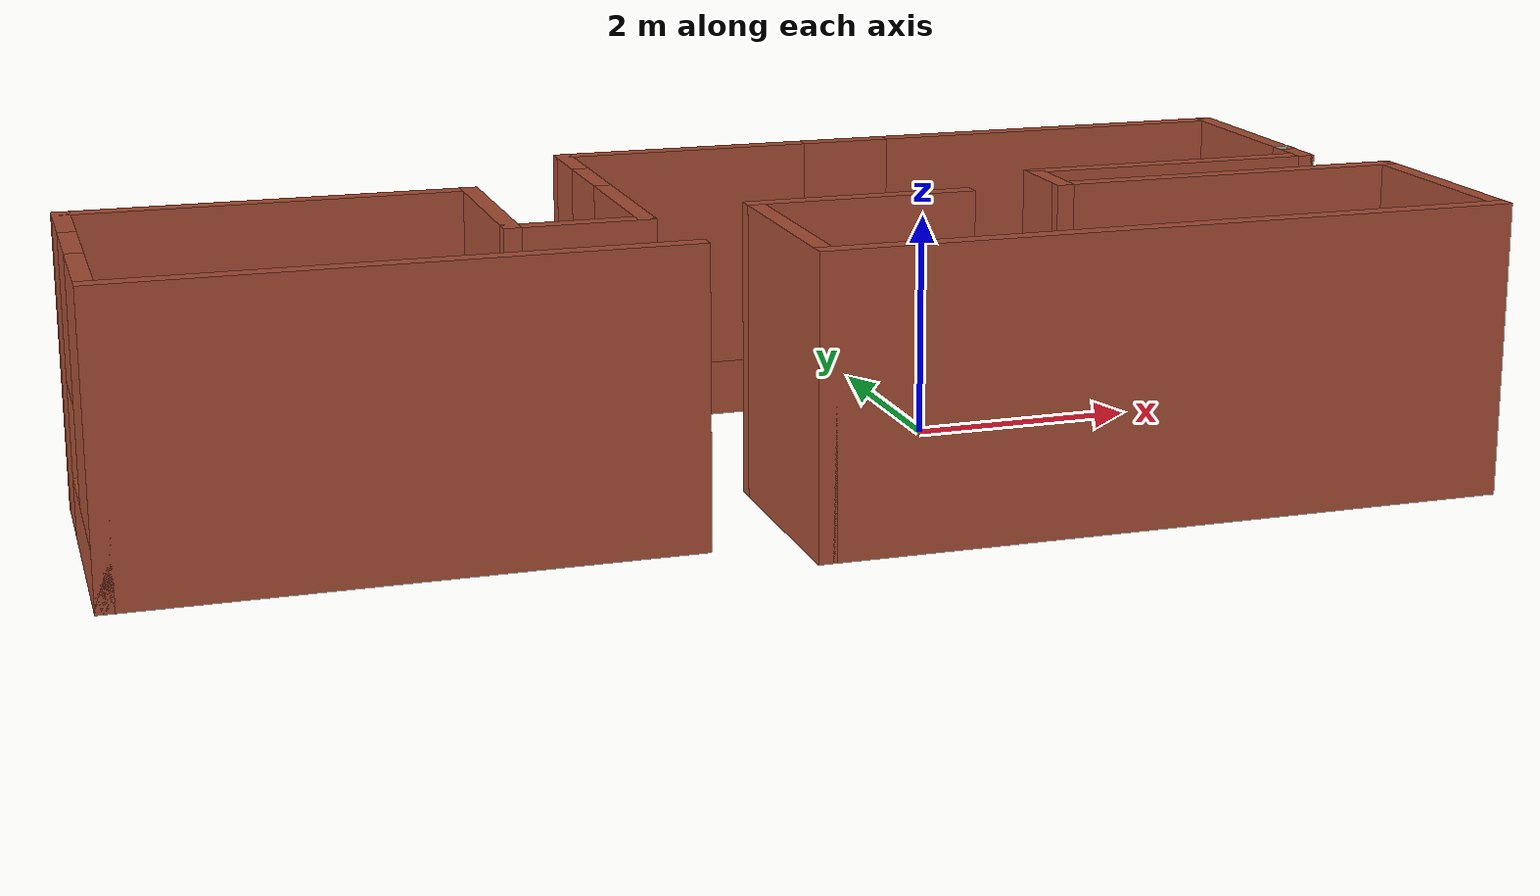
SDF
<?xml version='1.0'?>
<sdf version='1.6'>
  <model name='first'>
    <pose frame=''>-1.79 -0.99 0 0 -0 0</pose>
    <link name='Wall_0'>
      <collision name='Wall_0_Collision'>
        <geometry>
          <box>
            <size>2 0.15 2.5</size>
          </box>
        </geometry>
        <pose frame=''>0 0 1.25 0 -0 0</pose>
      </collision>
      <visual name='Wall_0_Visual'>
        <pose frame=''>0 0 1.25 0 -0 0</pose>
        <geometry>
          <box>
            <size>2 0.15 2.5</size>
          </box>
        </geometry>
        <material>
          <script>
            <uri>file://media/materials/scripts/gazebo.material</uri>
            <name>Gazebo/Bricks</name>
          </script>
          <ambient>0.996078 0.47451 0.0196078 1</ambient>
        </material>
        <meta>
          <layer>0</layer>
        </meta>
      </visual>
      <pose frame=''>0.725 -0.35 0 0 -0 3.14159</pose>
    </link>
    <link name='Wall_1'>
      <collision name='Wall_1_Collision'>
        <geometry>
          <box>
            <size>2 0.15 2.5</size>
          </box>
        </geometry>
        <pose frame=''>0 0 1.25 0 -0 0</pose>
      </collision>
      <visual name='Wall_1_Visual'>
        <pose frame=''>0 0 1.25 0 -0 0</pose>
        <geometry>
          <box>
            <size>2 0.15 2.5</size>
          </box>
        </geometry>
        <material>
          <script>
            <uri>file://media/materials/scripts/gazebo.material</uri>
            <name>Gazebo/Bricks</name>
          </script>
          <ambient>0.996078 0.47451 0.0196078 1</ambient>
        </material>
        <meta>
          <layer>0</layer>
        </meta>
      </visual>
      <pose frame=''>-0.2 -1.275 0 0 -0 -1.5708</pose>
    </link>
    <link name='Wall_10'>
      <collision name='Wall_10_Collision'>
        <geometry>
          <box>
            <size>1.75 0.15 2.5</size>
          </box>
        </geometry>
        <pose frame=''>0 0 1.25 0 -0 0</pose>
      </collision>
      <visual name='Wall_10_Visual'>
        <pose frame=''>0 0 1.25 0 -0 0</pose>
        <geometry>
          <box>
            <size>1.75 0.15 2.5</size>
          </box>
        </geometry>
        <material>
          <script>
            <uri>file://media/materials/scripts/gazebo.material</uri>
            <name>Gazebo/Bricks</name>
          </script>
          <ambient>0.996078 0.47451 0.0196078 1</ambient>
        </material>
        <meta>
          <layer>0</layer>
        </meta>
      </visual>
      <pose frame=''>5.15 1.4 0 0 -0 1.5708</pose>
    </link>
    <link name='Wall_11'>
      <pose frame=''>1.975 2.2 0 0 -0 3.14159</pose>
      <visual name='Wall_11_Visual_0'>
        <pose frame=''>-1.5625 0 1.25 0 -0 0</pose>
        <geometry>
          <box>
            <size>3.375 0.15 2.5</size>
          </box>
        </geometry>
        <material>
          <script>
            <uri>file://media/materials/scripts/gazebo.material</uri>
            <name>Gazebo/Bricks</name>
          </script>
          <ambient>0.8 0 0 1</ambient>
        </material>
        <meta>
          <layer>0</layer>
        </meta>
      </visual>
      <collision name='Wall_11_Collision_0'>
        <geometry>
          <box>
            <size>3.375 0.15 2.5</size>
          </box>
        </geometry>
        <pose frame=''>-1.5625 0 1.25 0 -0 0</pose>
      </collision>
      <visual name='Wall_11_Visual_1'>
        <pose frame=''>1.6875 0 0.25 0 -0 0</pose>
        <geometry>
          <box>
            <size>3.125 0.15 0.5</size>
          </box>
        </geometry>
        <material>
          <script>
            <uri>file://media/materials/scripts/gazebo.material</uri>
            <name>Gazebo/Bricks</name>
          </script>
          <ambient>0.8 0 0 1</ambient>
        </material>
        <meta>
          <layer>0</layer>
        </meta>
      </visual>
      <collision name='Wall_11_Collision_1'>
        <geometry>
          <box>
            <size>3.125 0.15 0.5</size>
          </box>
        </geometry>
        <pose frame=''>1.6875 0 0.25 0 -0 0</pose>
      </collision>
      <visual name='Wall_11_Visual_2'>
        <pose frame=''>2.0875 0 1.5 0 -0 0</pose>
        <geometry>
          <box>
            <size>2.325 0.15 2</size>
          </box>
        </geometry>
        <material>
          <script>
            <uri>file://media/materials/scripts/gazebo.material</uri>
            <name>Gazebo/Bricks</name>
          </script>
          <ambient>0.8 0 0 1</ambient>
        </material>
        <meta>
          <layer>0</layer>
        </meta>
      </visual>
      <collision name='Wall_11_Collision_2'>
        <geometry>
          <box>
            <size>2.325 0.15 2</size>
          </box>
        </geometry>
        <pose frame=''>2.0875 0 1.5 0 -0 0</pose>
      </collision>
      <visual name='Wall_11_Visual_3'>
        <pose frame=''>0.525 0 1.9 0 -0 0</pose>
        <geometry>
          <box>
            <size>0.8 0.15 1.2</size>
          </box>
        </geometry>
        <material>
          <script>
            <uri>file://media/materials/scripts/gazebo.material</uri>
            <name>Gazebo/Bricks</name>
          </script>
          <ambient>0.8 0 0 1</ambient>
        </material>
        <meta>
          <layer>0</layer>
        </meta>
      </visual>
      <collision name='Wall_11_Collision_3'>
        <geometry>
          <box>
            <size>0.8 0.15 1.2</size>
          </box>
        </geometry>
        <pose frame=''>0.525 0 1.9 0 -0 0</pose>
      </collision>
    </link>
    <link name='Wall_12'>
      <pose frame=''>-1.2 0.775 0 0 -0 -1.5708</pose>
      <visual name='Wall_12_Visual_0'>
        <pose frame=''>-1.1425 0 1.25 0 -0 0</pose>
        <geometry>
          <box>
            <size>0.715 0.15 2.5</size>
          </box>
        </geometry>
        <material>
          <script>
            <uri>file://media/materials/scripts/gazebo.material</uri>
            <name>Gazebo/Bricks</name>
          </script>
          <ambient>0.996078 0.47451 0.0196078 1</ambient>
        </material>
        <meta>
          <layer>0</layer>
        </meta>
      </visual>
      <collision name='Wall_12_Collision_0'>
        <geometry>
          <box>
            <size>0.715 0.15 2.5</size>
          </box>
        </geometry>
        <pose frame=''>-1.1425 0 1.25 0 -0 0</pose>
      </collision>
      <visual name='Wall_12_Visual_1'>
        <pose frame=''>0.3575 0 0.25 0 -0 0</pose>
        <geometry>
          <box>
            <size>2.285 0.15 0.5</size>
          </box>
        </geometry>
        <material>
          <script>
            <uri>file://media/materials/scripts/gazebo.material</uri>
            <name>Gazebo/Bricks</name>
          </script>
          <ambient>0.996078 0.47451 0.0196078 1</ambient>
        </material>
        <meta>
          <layer>0</layer>
        </meta>
      </visual>
      <collision name='Wall_12_Collision_1'>
        <geometry>
          <box>
            <size>2.285 0.15 0.5</size>
          </box>
        </geometry>
        <pose frame=''>0.3575 0 0.25 0 -0 0</pose>
      </collision>
      <visual name='Wall_12_Visual_2'>
        <pose frame=''>0.7575 0 1.5 0 -0 0</pose>
        <geometry>
          <box>
            <size>1.485 0.15 2</size>
          </box>
        </geometry>
        <material>
          <script>
            <uri>file://media/materials/scripts/gazebo.material</uri>
            <name>Gazebo/Bricks</name>
          </script>
          <ambient>0.996078 0.47451 0.0196078 1</ambient>
        </material>
        <meta>
          <layer>0</layer>
        </meta>
      </visual>
      <collision name='Wall_12_Collision_2'>
        <geometry>
          <box>
            <size>1.485 0.15 2</size>
          </box>
        </geometry>
        <pose frame=''>0.7575 0 1.5 0 -0 0</pose>
      </collision>
      <visual name='Wall_12_Visual_3'>
        <pose frame=''>-0.385 0 1.9 0 -0 0</pose>
        <geometry>
          <box>
            <size>0.8 0.15 1.2</size>
          </box>
        </geometry>
        <material>
          <script>
            <uri>file://media/materials/scripts/gazebo.material</uri>
            <name>Gazebo/Bricks</name>
          </script>
          <ambient>0.996078 0.47451 0.0196078 1</ambient>
        </material>
        <meta>
          <layer>0</layer>
        </meta>
      </visual>
      <collision name='Wall_12_Collision_3'>
        <geometry>
          <box>
            <size>0.8 0.15 1.2</size>
          </box>
        </geometry>
        <pose frame=''>-0.385 0 1.9 0 -0 0</pose>
      </collision>
    </link>
    <link name='Wall_13'>
      <collision name='Wall_13_Collision'>
        <geometry>
          <box>
            <size>1.25 0.15 2.5</size>
          </box>
        </geometry>
        <pose frame=''>0 0 1.25 0 -0 0</pose>
      </collision>
      <visual name='Wall_13_Visual'>
        <pose frame=''>0 0 1.25 0 -0 0</pose>
        <geometry>
          <box>
            <size>1.25 0.15 2.5</size>
          </box>
        </geometry>
        <material>
          <script>
            <uri>file://media/materials/scripts/gazebo.material</uri>
            <name>Gazebo/Bricks</name>
          </script>
          <ambient>0.996078 0.47451 0.0196078 1</ambient>
        </material>
        <meta>
          <layer>0</layer>
        </meta>
      </visual>
      <pose frame=''>-1.75 -0.65 0 0 -0 3.14159</pose>
    </link>
    <link name='Wall_14'>
      <collision name='Wall_14_Collision'>
        <geometry>
          <box>
            <size>1.75 0.15 2.5</size>
          </box>
        </geometry>
        <pose frame=''>0 0 1.25 0 -0 0</pose>
      </collision>
      <visual name='Wall_14_Visual'>
        <pose frame=''>0 0 1.25 0 -0 0</pose>
        <geometry>
          <box>
            <size>1.75 0.15 2.5</size>
          </box>
        </geometry>
        <material>
          <script>
            <uri>file://media/materials/scripts/gazebo.material</uri>
            <name>Gazebo/Bricks</name>
          </script>
          <ambient>0.996078 0.47451 0.0196078 1</ambient>
        </material>
        <meta>
          <layer>0</layer>
        </meta>
      </visual>
      <pose frame=''>-2.3 0.15 0 0 -0 1.5708</pose>
    </link>
    <link name='Wall_16'>
      <collision name='Wall_16_Collision'>
        <geometry>
          <box>
            <size>3.5 0.15 2.5</size>
          </box>
        </geometry>
        <pose frame=''>0 0 1.25 0 -0 0</pose>
      </collision>
      <visual name='Wall_16_Visual'>
        <pose frame=''>0 0 1.25 0 -0 0</pose>
        <geometry>
          <box>
            <size>3.5 0.15 2.5</size>
          </box>
        </geometry>
        <material>
          <script>
            <uri>file://media/materials/scripts/gazebo.material</uri>
            <name>Gazebo/Bricks</name>
          </script>
          <ambient>0.996078 0.47451 0.0196078 1</ambient>
        </material>
        <meta>
          <layer>0</layer>
        </meta>
      </visual>
      <pose frame=''>-3.975 0.95 0 0 -0 3.14159</pose>
    </link>
    <link name='Wall_17'>
      <pose frame=''>-5.65 -0.35 0 0 -0 -1.5708</pose>
      <visual name='Wall_17_Visual_0'>
        <pose frame=''>-0.9625 0 1.25 0 -0 0</pose>
        <geometry>
          <box>
            <size>0.825 0.15 2.5</size>
          </box>
        </geometry>
        <material>
          <script>
            <uri>file://media/materials/scripts/gazebo.material</uri>
            <name>Gazebo/Bricks</name>
          </script>
          <ambient>0.996078 0.47451 0.0196078 1</ambient>
        </material>
        <meta>
          <layer>0</layer>
        </meta>
      </visual>
      <collision name='Wall_17_Collision_0'>
        <geometry>
          <box>
            <size>0.825 0.15 2.5</size>
          </box>
        </geometry>
        <pose frame=''>-0.9625 0 1.25 0 -0 0</pose>
      </collision>
      <visual name='Wall_17_Visual_1'>
        <pose frame=''>0.4125 0 0.25 0 -0 0</pose>
        <geometry>
          <box>
            <size>1.925 0.15 0.5</size>
          </box>
        </geometry>
        <material>
          <script>
            <uri>file://media/materials/scripts/gazebo.material</uri>
            <name>Gazebo/Bricks</name>
          </script>
          <ambient>0.996078 0.47451 0.0196078 1</ambient>
        </material>
        <meta>
          <layer>0</layer>
        </meta>
      </visual>
      <collision name='Wall_17_Collision_1'>
        <geometry>
          <box>
            <size>1.925 0.15 0.5</size>
          </box>
        </geometry>
        <pose frame=''>0.4125 0 0.25 0 -0 0</pose>
      </collision>
      <visual name='Wall_17_Visual_2'>
        <pose frame=''>0.8125 0 1.5 0 -0 0</pose>
        <geometry>
          <box>
            <size>1.125 0.15 2</size>
          </box>
        </geometry>
        <material>
          <script>
            <uri>file://media/materials/scripts/gazebo.material</uri>
            <name>Gazebo/Bricks</name>
          </script>
          <ambient>0.996078 0.47451 0.0196078 1</ambient>
        </material>
        <meta>
          <layer>0</layer>
        </meta>
      </visual>
      <collision name='Wall_17_Collision_2'>
        <geometry>
          <box>
            <size>1.125 0.15 2</size>
          </box>
        </geometry>
        <pose frame=''>0.8125 0 1.5 0 -0 0</pose>
      </collision>
      <visual name='Wall_17_Visual_3'>
        <pose frame=''>-0.15 0 1.9 0 -0 0</pose>
        <geometry>
          <box>
            <size>0.8 0.15 1.2</size>
          </box>
        </geometry>
        <material>
          <script>
            <uri>file://media/materials/scripts/gazebo.material</uri>
            <name>Gazebo/Bricks</name>
          </script>
          <ambient>0.996078 0.47451 0.0196078 1</ambient>
        </material>
        <meta>
          <layer>0</layer>
        </meta>
      </visual>
      <collision name='Wall_17_Collision_3'>
        <geometry>
          <box>
            <size>0.8 0.15 1.2</size>
          </box>
        </geometry>
        <pose frame=''>-0.15 0 1.9 0 -0 0</pose>
      </collision>
    </link>
    <link name='Wall_18'>
      <collision name='Wall_18_Collision'>
        <geometry>
          <box>
            <size>4.75 0.15 2.5</size>
          </box>
        </geometry>
        <pose frame=''>0 0 1.25 0 -0 0</pose>
      </collision>
      <visual name='Wall_18_Visual'>
        <pose frame=''>0 0 1.25 0 -0 0</pose>
        <geometry>
          <box>
            <size>4.75 0.15 2.5</size>
          </box>
        </geometry>
        <material>
          <script>
            <uri>file://media/materials/scripts/gazebo.material</uri>
            <name>Gazebo/Bricks</name>
          </script>
          <ambient>0.8 0 0 1</ambient>
        </material>
        <meta>
          <layer>0</layer>
        </meta>
      </visual>
      <pose frame=''>-3.35 -1.65 0 0 -0 0</pose>
    </link>
    <link name='Wall_2'>
      <collision name='Wall_2_Collision'>
        <geometry>
          <box>
            <size>6 0.15 2.5</size>
          </box>
        </geometry>
        <pose frame=''>0 0 1.25 0 -0 0</pose>
      </collision>
      <visual name='Wall_2_Visual'>
        <pose frame=''>0 0 1.25 0 -0 0</pose>
        <geometry>
          <box>
            <size>6 0.15 2.5</size>
          </box>
        </geometry>
        <material>
          <script>
            <uri>file://media/materials/scripts/gazebo.material</uri>
            <name>Gazebo/Bricks</name>
          </script>
          <ambient>0.996078 0.47451 0.0196078 1</ambient>
        </material>
        <meta>
          <layer>0</layer>
        </meta>
      </visual>
      <pose frame=''>2.725 -2.2 0 0 -0 0</pose>
    </link>
    <link name='Wall_3'>
      <collision name='Wall_3_Collision'>
        <geometry>
          <box>
            <size>2 0.15 2.5</size>
          </box>
        </geometry>
        <pose frame=''>0 0 1.25 0 -0 0</pose>
      </collision>
      <visual name='Wall_3_Visual'>
        <pose frame=''>0 0 1.25 0 -0 0</pose>
        <geometry>
          <box>
            <size>2 0.15 2.5</size>
          </box>
        </geometry>
        <material>
          <script>
            <uri>file://media/materials/scripts/gazebo.material</uri>
            <name>Gazebo/Bricks</name>
          </script>
          <ambient>0.996078 0.47451 0.0196078 1</ambient>
        </material>
        <meta>
          <layer>0</layer>
        </meta>
      </visual>
      <pose frame=''>5.65 -1.275 0 0 -0 1.5708</pose>
    </link>
    <link name='Wall_4'>
      <collision name='Wall_4_Collision'>
        <geometry>
          <box>
            <size>3.25 0.15 2.5</size>
          </box>
        </geometry>
        <pose frame=''>0 0 1.25 0 -0 0</pose>
      </collision>
      <visual name='Wall_4_Visual'>
        <pose frame=''>0 0 1.25 0 -0 0</pose>
        <geometry>
          <box>
            <size>3.25 0.15 2.5</size>
          </box>
        </geometry>
        <material>
          <script>
            <uri>file://media/materials/scripts/gazebo.material</uri>
            <name>Gazebo/Bricks</name>
          </script>
          <ambient>0.8 0 0 1</ambient>
        </material>
        <meta>
          <layer>0</layer>
        </meta>
      </visual>
      <pose frame=''>4.1 -0.35 0 0 -0 3.14159</pose>
    </link>
    <link name='Wall_5'>
      <collision name='Wall_5_Collision'>
        <geometry>
          <box>
            <size>0.75 0.15 2.5</size>
          </box>
        </geometry>
        <pose frame=''>0 0 1.25 0 -0 0</pose>
      </collision>
      <visual name='Wall_5_Visual'>
        <pose frame=''>0 0 1.25 0 -0 0</pose>
        <geometry>
          <box>
            <size>0.75 0.15 2.5</size>
          </box>
        </geometry>
        <material>
          <script>
            <uri>file://media/materials/scripts/gazebo.material</uri>
            <name>Gazebo/Bricks</name>
          </script>
          <ambient>0.996078 0.47451 0.0196078 1</ambient>
        </material>
        <meta>
          <layer>0</layer>
        </meta>
      </visual>
      <pose frame=''>2.55 -0.05 0 0 -0 1.5708</pose>
    </link>
    <link name='Wall_6'>
      <collision name='Wall_6_Collision'>
        <geometry>
          <box>
            <size>2.75 0.15 2.5</size>
          </box>
        </geometry>
        <pose frame=''>0 0 1.25 0 -0 0</pose>
      </collision>
      <visual name='Wall_6_Visual'>
        <pose frame=''>0 0 1.25 0 -0 0</pose>
        <geometry>
          <box>
            <size>2.75 0.15 2.5</size>
          </box>
        </geometry>
        <material>
          <script>
            <uri>file://media/materials/scripts/gazebo.material</uri>
            <name>Gazebo/Bricks</name>
          </script>
          <ambient>0.996078 0.47451 0.0196078 1</ambient>
        </material>
        <meta>
          <layer>0</layer>
        </meta>
      </visual>
      <pose frame=''>3.85 0.25 0 0 -0 0</pose>
    </link>
    <link name='Wall_7'>
      <collision name='Wall_7_Collision'>
        <geometry>
          <box>
            <size>0.5 0.15 2.5</size>
          </box>
        </geometry>
        <pose frame=''>0 0 1.25 0 -0 0</pose>
      </collision>
      <visual name='Wall_7_Visual'>
        <pose frame=''>0 0 1.25 0 -0 0</pose>
        <geometry>
          <box>
            <size>0.5 0.15 2.5</size>
          </box>
        </geometry>
        <material>
          <script>
            <uri>file://media/materials/scripts/gazebo.material</uri>
            <name>Gazebo/Bricks</name>
          </script>
          <ambient>0.996078 0.47451 0.0196078 1</ambient>
        </material>
        <meta>
          <layer>0</layer>
        </meta>
      </visual>
      <pose frame=''>5.15 0.425 0 0 -0 1.5708</pose>
    </link>
    <link name='Wall_8'>
      <collision name='Wall_8_Collision'>
        <geometry>
          <box>
            <size>0.16 0.15 2.5</size>
          </box>
        </geometry>
        <pose frame=''>0 0 1.25 0 -0 0</pose>
      </collision>
      <visual name='Wall_8_Visual'>
        <pose frame=''>0 0 1.25 0 -0 0</pose>
        <geometry>
          <box>
            <size>0.16 0.15 2.5</size>
          </box>
        </geometry>
        <material>
          <script>
            <uri>file://media/materials/scripts/gazebo.material</uri>
            <name>Gazebo/Grey</name>
          </script>
          <ambient>1 1 1 1</ambient>
        </material>
        <meta>
          <layer>0</layer>
        </meta>
      </visual>
      <pose frame=''>5.155 0.6 0 0 -0 0</pose>
    </link>
    <static>1</static>
  </model>
</sdf>
